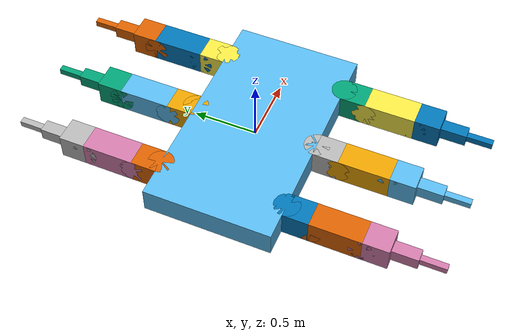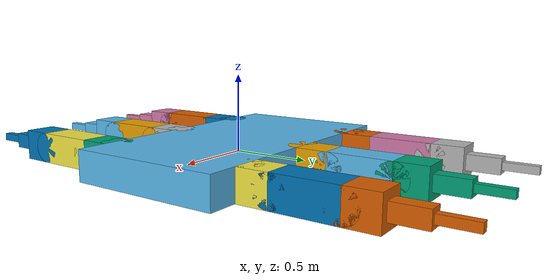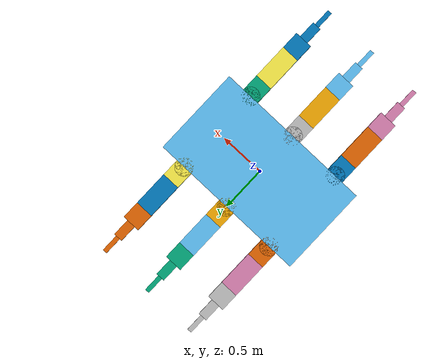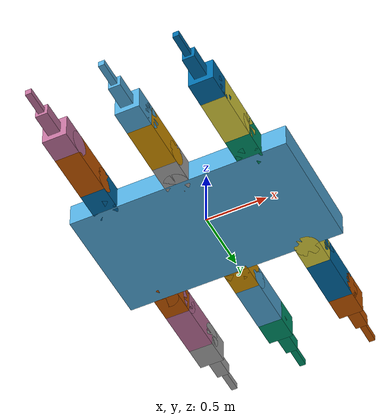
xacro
<?xml version="1.0"?>
<robot name="hexapod" xmlns:xacro="http://ros.org/wiki/xacro">

  <xacro:property name="pi" value="3.1415926535897931" />
  <xacro:property name="length" value="1.8" />
  <xacro:property name="width" value="1.0" />
  <xacro:property name="depth" value="0.2" />
  <xacro:property name="joint_1_lower_limit" value="${-pi}" />
  <xacro:property name="joint_1_upper_limit" value="${pi}" />
  <xacro:property name="joint_1_offset" value="${0}" />
  <xacro:property name="joint_2_lower_limit" value="${-pi}" />
  <xacro:property name="joint_2_upper_limit" value="${pi}" />
  <xacro:property name="joint_2_offset" value="${0}" />
  <xacro:property name="joint_3_lower_limit" value="${-pi}" />
  <xacro:property name="joint_3_upper_limit" value="${pi}" />
  <xacro:property name="joint_3_offset" value="${0}" />

  <link name="base_link">
  </link>

  <!-- Probably change to floating joint type in future. Will need to publish transform directly (not via joint state publisher. -->
  <joint name="base_to_body" type="floating">
    <parent link="base_link"/>
    <child link="body_link"/>
    <origin rpy="0 0 0" xyz="0 0 0"/>
  </joint>

  <link name="body_link">
    <visual>
      <geometry>
        <box size="${length} ${width} ${depth}"/>
      </geometry>
    </visual>
  </link>

  <xacro:macro name="joint_shape">
        <cylinder length="${depth}" radius="${depth/2}"/>
  </xacro:macro >

  <xacro:macro name="leg" params="position side reflect_leftright reflect_frontback">

  <joint name="base_to_leg_${position}_${side}_link_0" type="fixed">
    <parent link="body_link"/>
    <child link="leg_${position}_${side}_link_0"/>
    <origin rpy="0 0 ${reflect_leftright*pi/2}" xyz="${reflect_frontback*(length/2)*0.6666666} ${reflect_leftright*width/2} 0"/>
  </joint>

  <link name="leg_${position}_${side}_link_0">
  </link>

  <joint name="leg_${position}_${side}_joint_1" type="revolute">
    <parent link="leg_${position}_${side}_link_0"/>
    <child link="leg_${position}_${side}_link_1"/>
    <axis xyz="0 0 1"/>
    <limit lower="${joint_1_lower_limit}" upper="${joint_1_upper_limit}" effort="100" velocity="100" />
  </joint>

  <link name="leg_${position}_${side}_link_1">
    <visual>
      <geometry>
        <xacro:joint_shape />
      </geometry>
    </visual>
    <visual>
      <geometry>
        <box size="${depth} ${depth} ${depth}"/>
      </geometry>
      <origin rpy="0 0 0" xyz="${depth/2} 0 0"/>
    </visual>
  </link>

  <joint name="leg_${position}_${side}_joint_2" type="revolute">
    <parent link="leg_${position}_${side}_link_1"/>
    <child link="leg_${position}_${side}_link_2"/>
    <origin rpy="${pi/2} ${joint_2_offset} 0" xyz="${depth} 0 0"/>
    <axis xyz="0 0 1"/>
    <limit lower="${joint_2_lower_limit}" upper="${joint_2_upper_limit}" effort="100" velocity="100" />
  </joint>

  <link name="leg_${position}_${side}_link_2">
    <visual>
      <geometry>
        <xacro:joint_shape />
      </geometry>
      <origin rpy="0 0 0" xyz="0 0 0"/>
    </visual>
    <visual>
      <geometry>
        <box size="${depth*2} ${depth} ${depth}"/>
      </geometry>
      <origin rpy="0 0 0" xyz="${depth} 0 0"/>
    </visual>
  </link>

  <joint name="leg_${position}_${side}_joint_3" type="revolute">
    <parent link="leg_${position}_${side}_link_2"/>
    <child link="leg_${position}_${side}_link_3"/>
    <origin rpy="0 0 ${joint_3_offset}" xyz="${depth*2} 0 0"/>
    <axis xyz="0 0 1"/>
    <limit lower="${joint_3_lower_limit}" upper="${joint_3_upper_limit}" effort="100" velocity="100" />
  </joint>

  <link name="leg_${position}_${side}_link_3">
    <visual>
      <geometry>
        <xacro:joint_shape />
      </geometry>
      <origin rpy="0 0 0" xyz="0 0 0"/>
    </visual>
    <visual>
      <geometry>
        <box size="${depth} ${depth} ${depth}"/>
      </geometry>
      <origin rpy="0 0 0" xyz="${depth*0.5} 0 0"/>
    </visual>
    <visual>
      <geometry>
        <box size="${depth} ${depth/2} ${depth/2}"/>
      </geometry>
      <origin rpy="0 0 0" xyz="${depth*1.5} 0 0"/>
    </visual>
    <visual>
      <geometry>
        <box size="${depth} ${depth/4} ${depth/4}"/>
      </geometry>
      <origin rpy="0 0 0" xyz="${depth*2.5} 0 0"/>
    </visual>

  </link>

  <joint name="leg_${position}_${side}_joint_4_fixed" type="fixed">
    <parent link="leg_${position}_${side}_link_3"/>
    <child link="leg_${position}_${side}_foot"/>
    <origin rpy="0 0 0" xyz="${depth*3} 0 0"/>
  </joint>

  <link name="leg_${position}_${side}_foot">
  </link>

  </xacro:macro>

  <xacro:leg position="front" side="left" reflect_leftright="1" reflect_frontback="1"/>
  <xacro:leg position="middle" side="left" reflect_leftright="1" reflect_frontback="0"/>
  <xacro:leg position="back" side="left" reflect_leftright="1" reflect_frontback="-1"/>
  <xacro:leg position="front" side="right" reflect_leftright="-1" reflect_frontback="1"/>
  <xacro:leg position="middle" side="right" reflect_leftright="-1" reflect_frontback="0"/>
  <xacro:leg position="back" side="right" reflect_leftright="-1" reflect_frontback="-1"/>

</robot>
